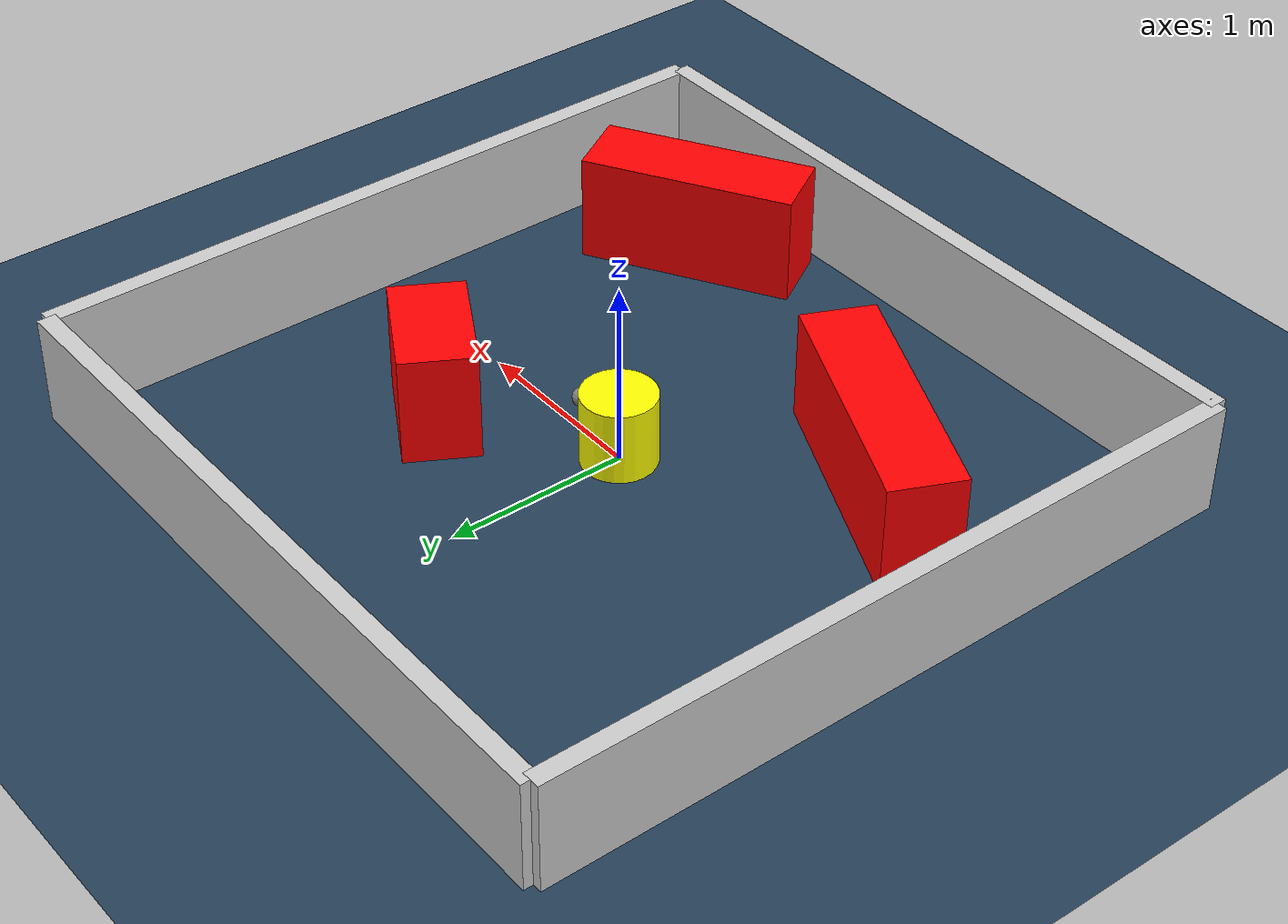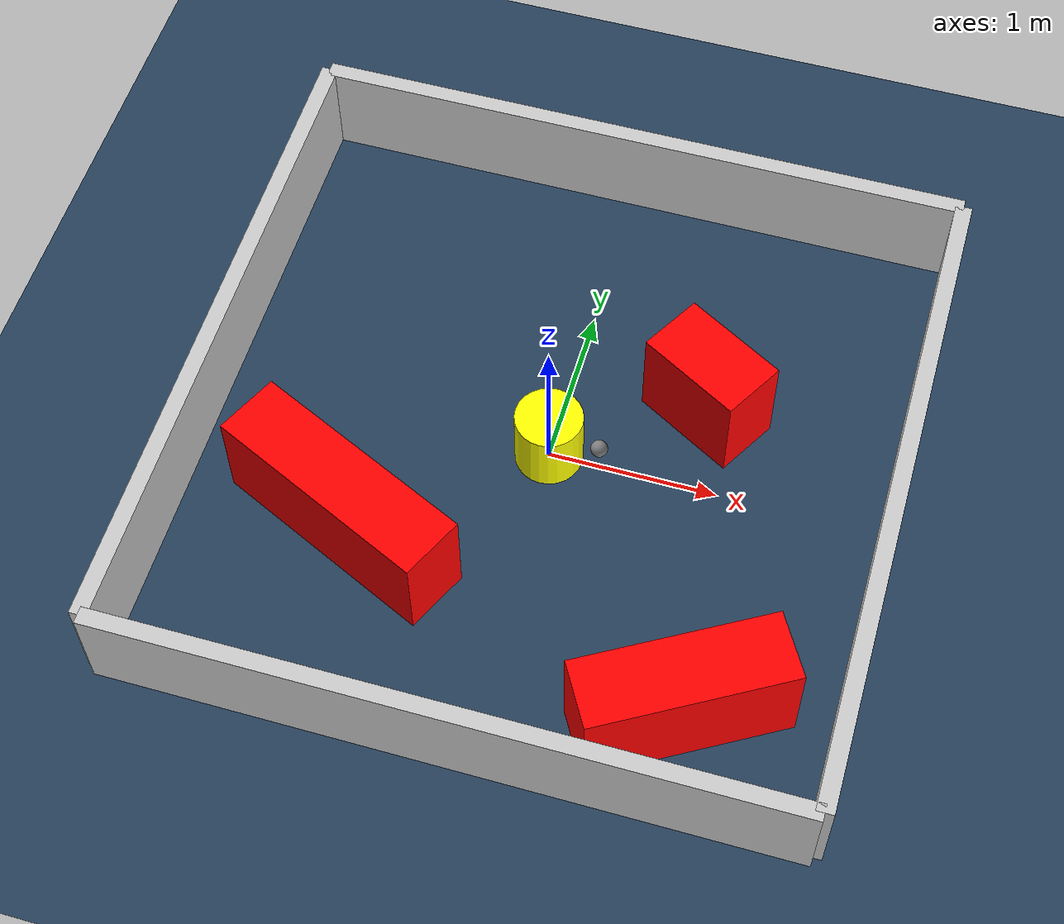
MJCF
<?xml version="1.0" ?>
<mujoco model="generated_environment">
  <option timestep="0.01" integrator="RK4" cone="elliptic"/>
  <default>
    <geom density="1"/>
  </default>
  <asset>
    <texture builtin="gradient" height="3072" rgb1="0.3 0.5 0.7" rgb2="0 0 0" type="skybox" width="512"/>
    <texture builtin="checker" height="300" mark="edge" markrgb="0.8 0.8 0.8" name="groundplane" rgb1="0.2 0.3 0.4" rgb2="0.1 0.2 0.3" type="2d" width="300"/>
    <material name="groundplane" reflectance="0.2" texrepeat="5 5" texture="groundplane" texuniform="true"/>
    <material name="robot" rgba="0.0 1.0 0.0 1"/>
  </asset>
  <worldbody>
    <light dir="0 0 -1" directional="true" pos="0 0 1.5"/>
    <geom condim="4" friction="1.0 0.005 0.001" material="groundplane" name="floor" size="0 0 0.05" type="plane"/>
    <body name="walls">
      <geom name="wall_1" condim="4" pos="-2.0 0.0 0.3" rgba="0.800000011920929 0.800000011920929 0.800000011920929 1.0" size="0.05 2.0 0.3" type="box"/>
      <geom name="wall_2" condim="4" pos="2.0 0.0 0.3" rgba="0.800000011920929 0.800000011920929 0.800000011920929 1.0" size="0.05 2.0 0.3" type="box"/>
      <geom name="wall_3" condim="4" pos="0.0 -2.0 0.3" rgba="0.800000011920929 0.800000011920929 0.800000011920929 1.0" size="2.0 0.05 0.3" type="box"/>
      <geom name="wall_4" condim="4" pos="0.0 2.0 0.3" rgba="0.800000011920929 0.800000011920929 0.800000011920929 1.0" size="2.0 0.05 0.3" type="box"/>
    </body>
    <body name="robot">
      <joint name="joint_x" type="slide" pos="0 0 0" axis="1 0 0"/>
      <joint name="joint_y" type="slide" pos="0 0 0" axis="0 1 0"/>
      <geom name="robot" type="sphere" pos="0.3 0.0 0.2" size="0.05" mass="5." friction="1.0 0.005 0.0001" condim="4" rgba="0.5 0.5 0.5 1.0"/>
      <site name="sensor_ball"/>
    </body>
    <body name="obstacle_movable_1">
      <geom name="obstacle_movable_1" condim="4" pos="0.0 0.0 0.2" euler="0 0 0.0" friction="1.0 0.005 0.001" rgba="1.0 1.0 0.0 1.0" size="0.2 0.2 0.0" type="cylinder" mass="0.1"/>
      <joint type="free"/>
    </body>
    <body name="obstacle_2_static">
      <geom name="obstacle_2_static" condim="4" pos="0.8119244980629376 0.5280927408608227 0.3" euler="0 0 330.2277217532989" friction="1.0 0.005 0.001" rgba="1 0 0 1" size="0.33079691852860654 0.2 0.3" type="box"/>
    </body>
    <body name="obstacle_3_static">
      <geom name="obstacle_3_static" condim="4" pos="-0.9739153310464312 -0.806393355575286 0.3" euler="0 0 335.0655385919853" friction="1.0 0.005 0.001" rgba="1 0 0 1" size="0.7101823120378419 0.2 0.3" type="box"/>
    </body>
    <body name="obstacle_4_static">
      <geom name="obstacle_4_static" condim="4" pos="1.141248664475734 -1.4255236183764177 0.3" euler="0 0 210.2161601181641" friction="1.0 0.005 0.001" rgba="1 0 0 1" size="0.5911644863040872 0.2 0.3" type="box"/>
    </body>
  </worldbody>
  <actuator>
    <motor name="actuator_x" joint="joint_x" gear="1" ctrlrange="-1 1"/>
    <motor name="actuator_y" joint="joint_y" gear="1" ctrlrange="-1 1"/>
  </actuator>
</mujoco>
